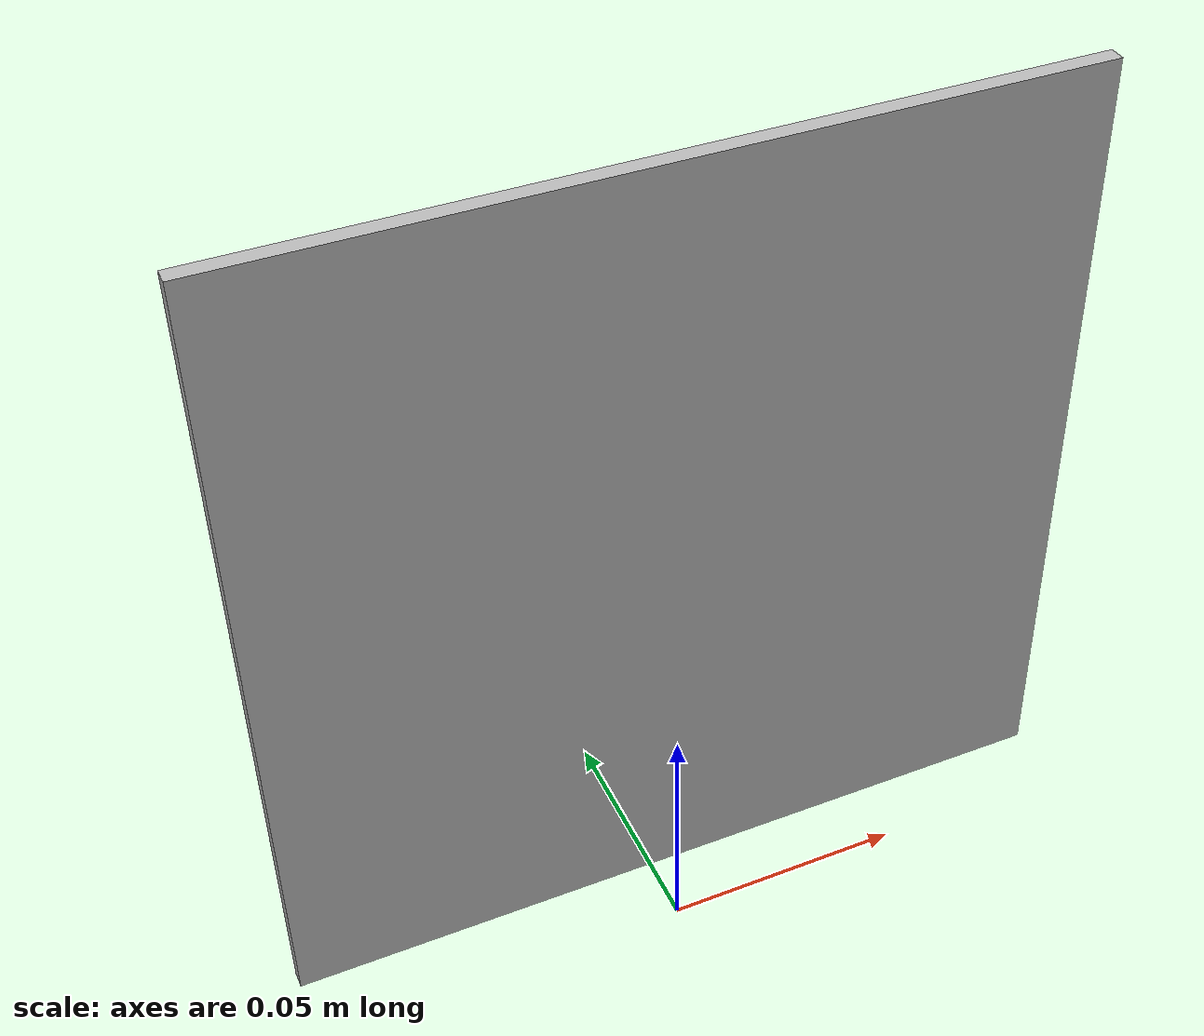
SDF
<?xml version='1.0'?>
<sdf version='1.4'>
  <model name="ArUco_15">
	<static>true</static>
          <link name='ArUco15_link'>
            <pose>0 0 .1 0 0 0</pose>

            <collision name='collision'>
              <geometry>
                <box>
                  <size>0.15 0.002 0.15</size>
                </box>
              </geometry>
            </collision>

            <visual name='visual'>
	      <lighting>0</lighting>
              <geometry>
                <mesh>
            	  <uri>model://ArUco_15/meshes/Aruco15.dae</uri>
		  <scale>1.6 1.6 1.6</scale>
          	</mesh>
              </geometry>
            </visual>
          </link>
  </model>
</sdf>
